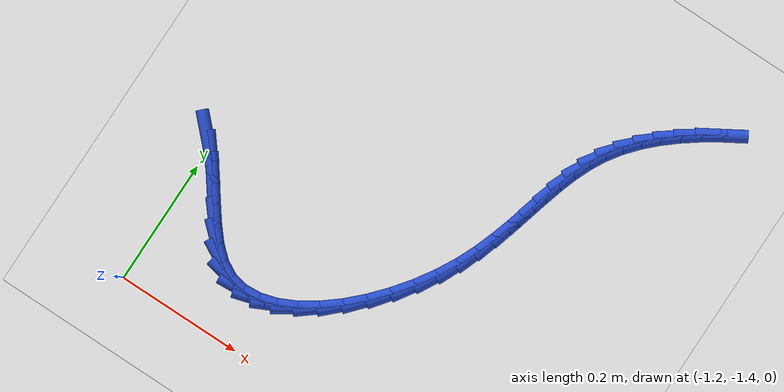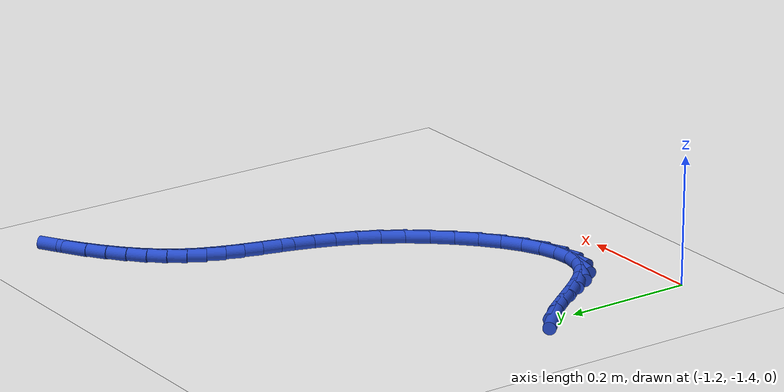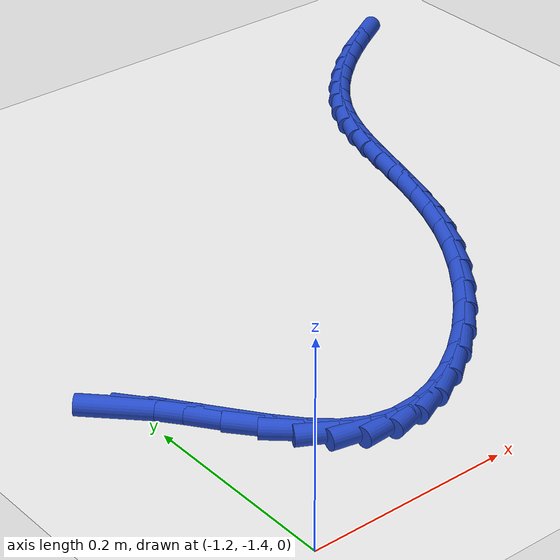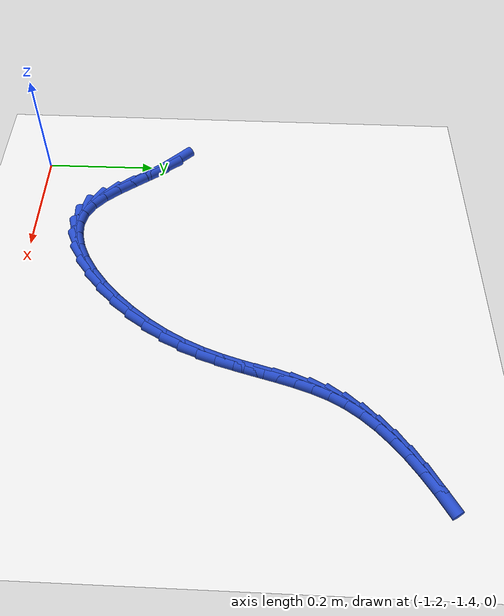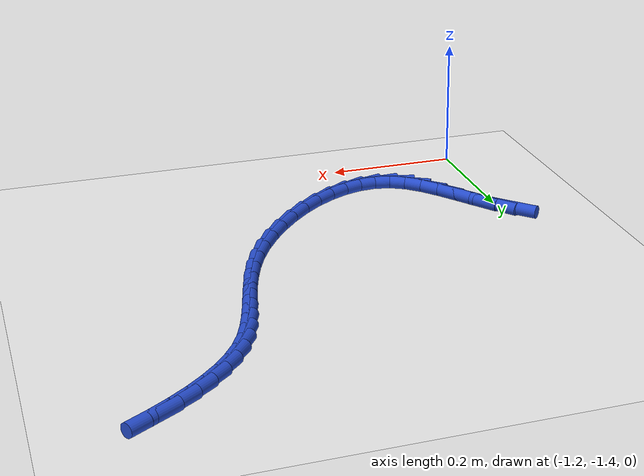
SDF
<sdf version="1.6">
 <world name="default">
  <model name="ground_plane">
   <static>1</static>
   <link name="link">
    <collision name="collision">
     <geometry><plane><normal>0 0 1</normal><size>100 100</size></plane></geometry>
     <surface><friction><ode><mu>100</mu><mu2>50</mu2></ode></friction></surface>
    </collision>
    <visual name="visual">
     <cast_shadows>0</cast_shadows>
     <geometry><plane><normal>0 0 1</normal><size>100 100</size></plane></geometry>
     <material>
      <script><uri>file://media/materials/scripts/gazebo.material</uri><name>Gazebo/WhiteGlow</name></script>
     </material>
    </visual>
   </link>
  </model>
  <model name="line">
   <link name="link_204">
    <pose>-1.2122222920908918 -1.1545591217751943 0.01 0 1.57 -0.7955615233184403</pose>
    <collision name="collision">
     <geometry><cylinder><radius>0.01</radius><length>0.08</length></cylinder></geometry>
    </collision>
    <visual name="visual">
     <material>
      <script><name>Gazebo/Blue</name><uri>file://media/materials/scripts/gazebo.material</uri></script>
     </material>
     <geometry><cylinder><radius>0.01</radius><length>0.08</length></cylinder></geometry>
    </visual>
   </link>
   <link name="link_205">
    <pose>-1.1905203578837615 -1.17670673000977 0.01 0 1.57 -0.8997010287063277</pose>
    <collision name="collision">
     <geometry><cylinder><radius>0.01</radius><length>0.08</length></cylinder></geometry>
    </collision>
    <visual name="visual">
     <material>
      <script><name>Gazebo/Blue</name><uri>file://media/materials/scripts/gazebo.material</uri></script>
     </material>
     <geometry><cylinder><radius>0.01</radius><length>0.08</length></cylinder></geometry>
    </visual>
   </link>
   <link name="link_206">
    <pose>-1.1701052064517263 -1.2024172608330734 0.01 0 1.57 -0.9430802766990671</pose>
    <collision name="collision">
     <geometry><cylinder><radius>0.01</radius><length>0.08</length></cylinder></geometry>
    </collision>
    <visual name="visual">
     <material>
      <script><name>Gazebo/Blue</name><uri>file://media/materials/scripts/gazebo.material</uri></script>
     </material>
     <geometry><cylinder><radius>0.01</radius><length>0.08</length></cylinder></geometry>
    </visual>
   </link>
   <link name="link_207">
    <pose>-1.1503612799176177 -1.2296269031082878 0.01 0 1.57 -0.9344295890060405</pose>
    <collision name="collision">
     <geometry><cylinder><radius>0.01</radius><length>0.08</length></cylinder></geometry>
    </collision>
    <visual name="visual">
     <material>
      <script><name>Gazebo/Blue</name><uri>file://media/materials/scripts/gazebo.material</uri></script>
     </material>
     <geometry><cylinder><radius>0.01</radius><length>0.08</length></cylinder></geometry>
    </visual>
   </link>
   <link name="link_208">
    <pose>-1.1306730204042696 -1.2562718456985944 0.01 0 1.57 -0.870324245554078</pose>
    <collision name="collision">
     <geometry><cylinder><radius>0.01</radius><length>0.08</length></cylinder></geometry>
    </collision>
    <visual name="visual">
     <material>
      <script><name>Gazebo/Blue</name><uri>file://media/materials/scripts/gazebo.material</uri></script>
     </material>
     <geometry><cylinder><radius>0.01</radius><length>0.08</length></cylinder></geometry>
    </visual>
   </link>
   <link name="link_209">
    <pose>-1.1104248700345136 -1.280288277467176 0.01 0 1.57 -0.7339195786781421</pose>
    <collision name="collision">
     <geometry><cylinder><radius>0.01</radius><length>0.08</length></cylinder></geometry>
    </collision>
    <visual name="visual">
     <material>
      <script><name>Gazebo/Blue</name><uri>file://media/materials/scripts/gazebo.material</uri></script>
     </material>
     <geometry><cylinder><radius>0.01</radius><length>0.08</length></cylinder></geometry>
    </visual>
   </link>
   <link name="link_210">
    <pose>-1.0890012709311832 -1.2996123872772138 0.01 0 1.57 -0.4975796268891901</pose>
    <collision name="collision">
     <geometry><cylinder><radius>0.01</radius><length>0.08</length></cylinder></geometry>
    </collision>
    <visual name="visual">
     <material>
      <script><name>Gazebo/Blue</name><uri>file://media/materials/scripts/gazebo.material</uri></script>
     </material>
     <geometry><cylinder><radius>0.01</radius><length>0.08</length></cylinder></geometry>
    </visual>
   </link>
   <link name="link_211">
    <pose>-1.0658002384062568 -1.3122143507949982 0.01 0 1.57 -0.1981846890026469</pose>
    <collision name="collision">
     <geometry><cylinder><radius>0.01</radius><length>0.08</length></cylinder></geometry>
    </collision>
    <visual name="visual">
     <material>
      <script><name>Gazebo/Blue</name><uri>file://media/materials/scripts/gazebo.material</uri></script>
     </material>
     <geometry><cylinder><radius>0.01</radius><length>0.08</length></cylinder></geometry>
    </visual>
   </link>
   <link name="link_212">
    <pose>-1.040695645724162 -1.317255875784517 0.01 0 1.57 0.07072430155100008</pose>
    <collision name="collision">
     <geometry><cylinder><radius>0.01</radius><length>0.08</length></cylinder></geometry>
    </collision>
    <visual name="visual">
     <material>
      <script><name>Gazebo/Blue</name><uri>file://media/materials/scripts/gazebo.material</uri></script>
     </material>
     <geometry><cylinder><radius>0.01</radius><length>0.08</length></cylinder></geometry>
    </visual>
   </link>
   <link name="link_213">
    <pose>-1.0141511211511771 -1.3153753964380428 0.01 0 1.57 0.28567053516593155</pose>
    <collision name="collision">
     <geometry><cylinder><radius>0.01</radius><length>0.08</length></cylinder></geometry>
    </collision>
    <visual name="visual">
     <material>
      <script><name>Gazebo/Blue</name><uri>file://media/materials/scripts/gazebo.material</uri></script>
     </material>
     <geometry><cylinder><radius>0.01</radius><length>0.08</length></cylinder></geometry>
    </visual>
   </link>
   <link name="link_214">
    <pose>-0.9866669748777013 -1.3073031972358748 0.01 0 1.57 0.45130776493160646</pose>
    <collision name="collision">
     <geometry><cylinder><radius>0.01</radius><length>0.08</length></cylinder></geometry>
    </collision>
    <visual name="visual">
     <material>
      <script><name>Gazebo/Blue</name><uri>file://media/materials/scripts/gazebo.material</uri></script>
     </material>
     <geometry><cylinder><radius>0.01</radius><length>0.08</length></cylinder></geometry>
    </visual>
   </link>
   <link name="link_215">
    <pose>-0.9587435170941312 -1.2937695626583112 0.01 0 1.57 0.58025562707249</pose>
    <collision name="collision">
     <geometry><cylinder><radius>0.01</radius><length>0.08</length></cylinder></geometry>
    </collision>
    <visual name="visual">
     <material>
      <script><name>Gazebo/Blue</name><uri>file://media/materials/scripts/gazebo.material</uri></script>
     </material>
     <geometry><cylinder><radius>0.01</radius><length>0.08</length></cylinder></geometry>
    </visual>
   </link>
   <link name="link_216">
    <pose>-0.930881057990863 -1.2755047771856503 0.01 0 1.57 0.6841553644318373</pose>
    <collision name="collision">
     <geometry><cylinder><radius>0.01</radius><length>0.08</length></cylinder></geometry>
    </collision>
    <visual name="visual">
     <material>
      <script><name>Gazebo/Blue</name><uri>file://media/materials/scripts/gazebo.material</uri></script>
     </material>
     <geometry><cylinder><radius>0.01</radius><length>0.08</length></cylinder></geometry>
    </visual>
   </link>
   <link name="link_217">
    <pose>-0.9035799077582962 -1.2532391252981918 0.01 0 1.57 0.7718154746866477</pose>
    <collision name="collision">
     <geometry><cylinder><radius>0.01</radius><length>0.08</length></cylinder></geometry>
    </collision>
    <visual name="visual">
     <material>
      <script><name>Gazebo/Blue</name><uri>file://media/materials/scripts/gazebo.material</uri></script>
     </material>
     <geometry><cylinder><radius>0.01</radius><length>0.08</length></cylinder></geometry>
    </visual>
   </link>
   <link name="link_218">
    <pose>-0.8773403765868268 -1.2277028914762333 0.01 0 1.57 0.8497388632428198</pose>
    <collision name="collision">
     <geometry><cylinder><radius>0.01</radius><length>0.08</length></cylinder></geometry>
    </collision>
    <visual name="visual">
     <material>
      <script><name>Gazebo/Blue</name><uri>file://media/materials/scripts/gazebo.material</uri></script>
     </material>
     <geometry><cylinder><radius>0.01</radius><length>0.08</length></cylinder></geometry>
    </visual>
   </link>
   <link name="link_219">
    <pose>-0.8526627746668538 -1.1996263602000752 0.01 0 1.57 0.9230164273518612</pose>
    <collision name="collision">
     <geometry><cylinder><radius>0.01</radius><length>0.08</length></cylinder></geometry>
    </collision>
    <visual name="visual">
     <material>
      <script><name>Gazebo/Blue</name><uri>file://media/materials/scripts/gazebo.material</uri></script>
     </material>
     <geometry><cylinder><radius>0.01</radius><length>0.08</length></cylinder></geometry>
    </visual>
   </link>
   <link name="link_220">
    <pose>-0.8300474121887733 -1.1697398159500145 0.01 0 1.57 0.9961316365672863</pose>
    <collision name="collision">
     <geometry><cylinder><radius>0.01</radius><length>0.08</length></cylinder></geometry>
    </collision>
    <visual name="visual">
     <material>
      <script><name>Gazebo/Blue</name><uri>file://media/materials/scripts/gazebo.material</uri></script>
     </material>
     <geometry><cylinder><radius>0.01</radius><length>0.08</length></cylinder></geometry>
    </visual>
   </link>
   <link name="link_221">
    <pose>-0.8099945993429839 -1.1387735432063515 0.01 0 1.57 1.0736616314050251</pose>
    <collision name="collision">
     <geometry><cylinder><radius>0.01</radius><length>0.08</length></cylinder></geometry>
    </collision>
    <visual name="visual">
     <material>
      <script><name>Gazebo/Blue</name><uri>file://media/materials/scripts/gazebo.material</uri></script>
     </material>
     <geometry><cylinder><radius>0.01</radius><length>0.08</length></cylinder></geometry>
    </visual>
   </link>
   <link name="link_222">
    <pose>-0.7930024918902433 -1.10745675743815 0.01 0 1.57 1.1535705289443536</pose>
    <collision name="collision">
     <geometry><cylinder><radius>0.01</radius><length>0.08</length></cylinder></geometry>
    </collision>
    <visual name="visual">
     <material>
      <script><name>Gazebo/Blue</name><uri>file://media/materials/scripts/gazebo.material</uri></script>
     </material>
     <geometry><cylinder><radius>0.01</radius><length>0.08</length></cylinder></geometry>
    </visual>
   </link>
   <link name="link_223">
    <pose>-0.7792102561583183 -1.0763405463494098 0.01 0 1.57 1.2210941780188902</pose>
    <collision name="collision">
     <geometry><cylinder><radius>0.01</radius><length>0.08</length></cylinder></geometry>
    </collision>
    <visual name="visual">
     <material>
      <script><name>Gazebo/Blue</name><uri>file://media/materials/scripts/gazebo.material</uri></script>
     </material>
     <geometry><cylinder><radius>0.01</radius><length>0.08</length></cylinder></geometry>
    </visual>
   </link>
   <link name="link_224">
    <pose>-0.76799949189213 -1.0456000989967322 0.01 0 1.57 1.2710879968634334</pose>
    <collision name="collision">
     <geometry><cylinder><radius>0.01</radius><length>0.08</length></cylinder></geometry>
    </collision>
    <visual name="visual">
     <material>
      <script><name>Gazebo/Blue</name><uri>file://media/materials/scripts/gazebo.material</uri></script>
     </material>
     <geometry><cylinder><radius>0.01</radius><length>0.08</length></cylinder></geometry>
    </visual>
   </link>
   <link name="link_225">
    <pose>-0.7586556987590105 -1.0153629203255174 0.01 0 1.57 1.3008744839961293</pose>
    <collision name="collision">
     <geometry><cylinder><radius>0.01</radius><length>0.08</length></cylinder></geometry>
    </collision>
    <visual name="visual">
     <material>
      <script><name>Gazebo/Blue</name><uri>file://media/materials/scripts/gazebo.material</uri></script>
     </material>
     <geometry><cylinder><radius>0.01</radius><length>0.08</length></cylinder></geometry>
    </visual>
   </link>
   <link name="link_226">
    <pose>-0.7504643764262913 -0.9857565152811637 0.01 0 1.57 1.3082364154926411</pose>
    <collision name="collision">
     <geometry><cylinder><radius>0.01</radius><length>0.08</length></cylinder></geometry>
    </collision>
    <visual name="visual">
     <material>
      <script><name>Gazebo/Blue</name><uri>file://media/materials/scripts/gazebo.material</uri></script>
     </material>
     <geometry><cylinder><radius>0.01</radius><length>0.08</length></cylinder></geometry>
    </visual>
   </link>
   <link name="link_227">
    <pose>-0.7427110245613033 -0.956908388809068 0.01 0 1.57 1.2911534610765751</pose>
    <collision name="collision">
     <geometry><cylinder><radius>0.01</radius><length>0.08</length></cylinder></geometry>
    </collision>
    <visual name="visual">
     <material>
      <script><name>Gazebo/Blue</name><uri>file://media/materials/scripts/gazebo.material</uri></script>
     </material>
     <geometry><cylinder><radius>0.01</radius><length>0.08</length></cylinder></geometry>
    </visual>
   </link>
   <link name="link_228">
    <pose>-0.7346811428313791 -0.9289460458546315 0.01 0 1.57 1.24778079337135</pose>
    <collision name="collision">
     <geometry><cylinder><radius>0.01</radius><length>0.08</length></cylinder></geometry>
    </collision>
    <visual name="visual">
     <material>
      <script><name>Gazebo/Blue</name><uri>file://media/materials/scripts/gazebo.material</uri></script>
     </material>
     <geometry><cylinder><radius>0.01</radius><length>0.08</length></cylinder></geometry>
    </visual>
   </link>
   <link name="link_229">
    <pose>-0.7256602309038495 -0.9019969913632505 0.01 0 1.57 1.1768969436307146</pose>
    <collision name="collision">
     <geometry><cylinder><radius>0.01</radius><length>0.08</length></cylinder></geometry>
    </collision>
    <visual name="visual">
     <material>
      <script><name>Gazebo/Blue</name><uri>file://media/materials/scripts/gazebo.material</uri></script>
     </material>
     <geometry><cylinder><radius>0.01</radius><length>0.08</length></cylinder></geometry>
    </visual>
   </link>
   <link name="link_230">
    <pose>-0.7149337884460467 -0.8761887302803257 0.01 0 1.57 1.0790238315237402</pose>
    <collision name="collision">
     <geometry><cylinder><radius>0.01</radius><length>0.08</length></cylinder></geometry>
    </collision>
    <visual name="visual">
     <material>
      <script><name>Gazebo/Blue</name><uri>file://media/materials/scripts/gazebo.material</uri></script>
     </material>
     <geometry><cylinder><radius>0.01</radius><length>0.08</length></cylinder></geometry>
    </visual>
   </link>
   <link name="link_231">
    <pose>-0.7017884198402616 -0.8516485464184081 0.01 0 1.57 0.9669896963869897</pose>
    <collision name="collision">
     <geometry><cylinder><radius>0.01</radius><length>0.08</length></cylinder></geometry>
    </collision>
    <visual name="visual">
     <material>
      <script><name>Gazebo/Blue</name><uri>file://media/materials/scripts/gazebo.material</uri></script>
     </material>
     <geometry><cylinder><radius>0.01</radius><length>0.08</length></cylinder></geometry>
    </visual>
   </link>
   <link name="link_232">
    <pose>-0.6857864485524139 -0.8284485323887463 0.01 0 1.57 0.8654719581786523</pose>
    <collision name="collision">
     <geometry><cylinder><radius>0.01</radius><length>0.08</length></cylinder></geometry>
    </collision>
    <visual name="visual">
     <material>
      <script><name>Gazebo/Blue</name><uri>file://media/materials/scripts/gazebo.material</uri></script>
     </material>
     <geometry><cylinder><radius>0.01</radius><length>0.08</length></cylinder></geometry>
    </visual>
   </link>
   <link name="link_233">
    <pose>-0.6671271239466725 -0.8065332861620138 0.01 0 1.57 0.7776357471153718</pose>
    <collision name="collision">
     <geometry><cylinder><radius>0.01</radius><length>0.08</length></cylinder></geometry>
    </collision>
    <visual name="visual">
     <material>
      <script><name>Gazebo/Blue</name><uri>file://media/materials/scripts/gazebo.material</uri></script>
     </material>
     <geometry><cylinder><radius>0.01</radius><length>0.08</length></cylinder></geometry>
    </visual>
   </link>
   <link name="link_234">
    <pose>-0.6460993521773354 -0.7858294589426079 0.01 0 1.57 0.7025951671703768</pose>
    <collision name="collision">
     <geometry><cylinder><radius>0.01</radius><length>0.08</length></cylinder></geometry>
    </collision>
    <visual name="visual">
     <material>
      <script><name>Gazebo/Blue</name><uri>file://media/materials/scripts/gazebo.material</uri></script>
     </material>
     <geometry><cylinder><radius>0.01</radius><length>0.08</length></cylinder></geometry>
    </visual>
   </link>
   <link name="link_235">
    <pose>-0.6229920393986992 -0.7662637019349241 0.01 0 1.57 0.6390541798465803</pose>
    <collision name="collision">
     <geometry><cylinder><radius>0.01</radius><length>0.08</length></cylinder></geometry>
    </collision>
    <visual name="visual">
     <material>
      <script><name>Gazebo/Blue</name><uri>file://media/materials/scripts/gazebo.material</uri></script>
     </material>
     <geometry><cylinder><radius>0.01</radius><length>0.08</length></cylinder></geometry>
    </visual>
   </link>
   <link name="link_236">
    <pose>-0.5980940917650603 -0.7477626663433583 0.01 0 1.57 0.5856355299654724</pose>
    <collision name="collision">
     <geometry><cylinder><radius>0.01</radius><length>0.08</length></cylinder></geometry>
    </collision>
    <visual name="visual">
     <material>
      <script><name>Gazebo/Blue</name><uri>file://media/materials/scripts/gazebo.material</uri></script>
     </material>
     <geometry><cylinder><radius>0.01</radius><length>0.08</length></cylinder></geometry>
    </visual>
   </link>
   <link name="link_237">
    <pose>-0.571694415430717 -0.7302530033723074 0.01 0 1.57 0.5410620723261248</pose>
    <collision name="collision">
     <geometry><cylinder><radius>0.01</radius><length>0.08</length></cylinder></geometry>
    </collision>
    <visual name="visual">
     <material>
      <script><name>Gazebo/Blue</name><uri>file://media/materials/scripts/gazebo.material</uri></script>
     </material>
     <geometry><cylinder><radius>0.01</radius><length>0.08</length></cylinder></geometry>
    </visual>
   </link>
  </model>
 </world>
</sdf>
